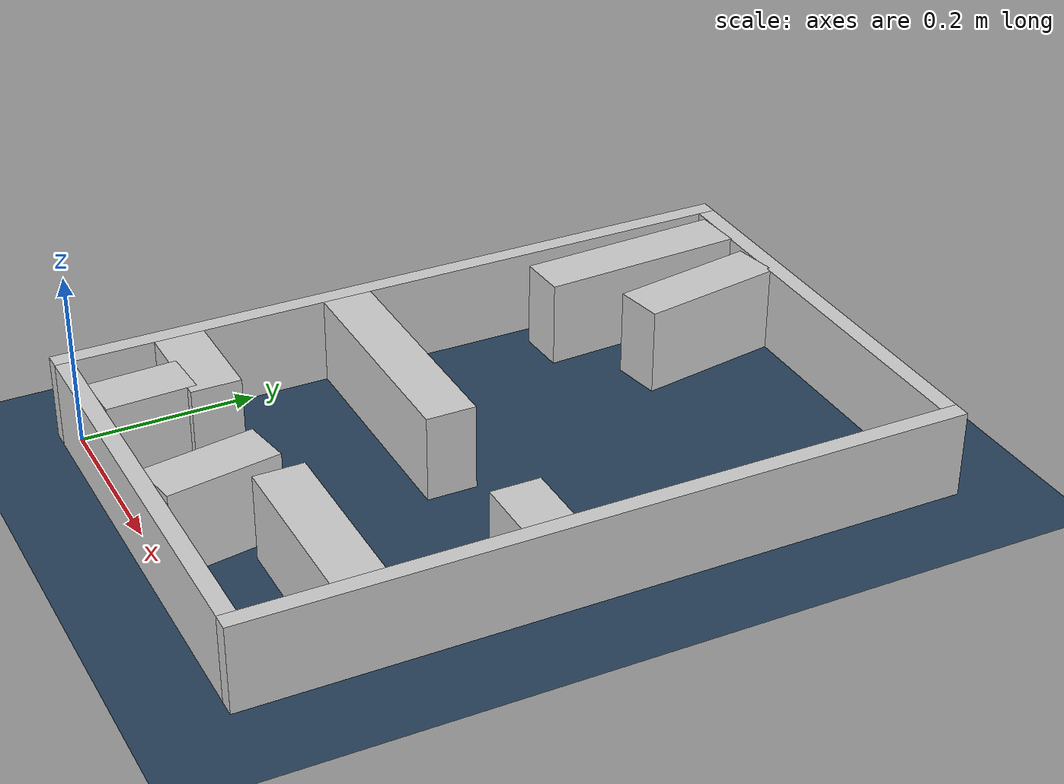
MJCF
<?xml version="1.0" ?>
<mujoco model="generated_real_template">
  <compiler angle="degree"/>
  <option timestep="0.002" integrator="implicitfast" iterations="100" cone="elliptic"/>
  <default>
    <geom density="1"/>
  </default>
  <asset>
    <texture builtin="gradient" height="3072" rgb1="0.3 0.5 0.7" rgb2="0 0 0" type="skybox" width="512"/>
    <texture builtin="checker" height="300" mark="edge" markrgb="0.8 0.8 0.8" name="groundplane" rgb1="0.2 0.3 0.4" rgb2="0.1 0.2 0.3" type="2d" width="300"/>
    <material name="groundplane" reflectance="0.2" texrepeat="5 5" texture="groundplane" texuniform="true"/>
  </asset>
  <worldbody>
    <light dir="0 0 -1" directional="true" pos="0 0 1.5"/>
    <geom name="floor" type="plane" condim="4" friction="0.5 0.005 0.001" material="groundplane" size="0 0 0.05"/>
    <body name="walls">
      <geom name="wall_boundary_left" type="box" condim="4" friction="1.0 0.005 0.0001" rgba="0.8 0.8 0.8 1" pos="-0.010000 0.387500 0.050000" euler="0 0 0.000000" size="0.010000 0.407500 0.050000"/>
      <geom name="wall_boundary_right" type="box" condim="4" friction="1.0 0.005 0.0001" rgba="0.8 0.8 0.8 1" pos="0.500000 0.387500 0.050000" euler="0 0 0.000000" size="0.010000 0.407500 0.050000"/>
      <geom name="wall_boundary_bottom" type="box" condim="4" friction="1.0 0.005 0.0001" rgba="0.8 0.8 0.8 1" pos="0.245000 -0.010000 0.050000" euler="0 0 0.000000" size="0.245000 0.010000 0.050000"/>
      <geom name="wall_boundary_top" type="box" condim="4" friction="1.0 0.005 0.0001" rgba="0.8 0.8 0.8 1" pos="0.245000 0.785000 0.050000" euler="0 0 0.000000" size="0.245000 0.010000 0.050000"/>
      <geom name="wall_inner_1_1" type="box" condim="4" friction="1.0 0.005 0.0001" rgba="0.8 0.8 0.8 1" pos="0.136557 0.318399 0.050000" euler="0 0 0.000000" size="0.136557 0.028500 0.050000"/>
      <geom name="wall_inner_1_2" type="box" condim="4" friction="1.0 0.005 0.0001" rgba="0.8 0.8 0.8 1" pos="0.455087 0.318399 0.050000" euler="0 0 0.000000" size="0.034913 0.028500 0.050000"/>
      <geom name="wall_inner_2_1" type="box" condim="4" friction="1.0 0.005 0.0001" rgba="0.8 0.8 0.8 1" pos="0.144857 0.689135 0.050000" euler="0 0 -80.531454" size="0.087051 0.028500 0.050000"/>
      <geom name="wall_inner_2_2" type="box" condim="4" friction="1.0 0.005 0.0001" rgba="0.8 0.8 0.8 1" pos="0.249078 0.064230 0.050000" euler="0 0 -80.531454" size="0.065117 0.028500 0.050000"/>
      <geom name="wall_inner_3_1" type="box" condim="4" friction="1.0 0.005 0.0001" rgba="0.8 0.8 0.8 1" pos="0.078241 0.050397 0.050000" euler="0 0 92.734515" size="0.050454 0.028500 0.050000"/>
      <geom name="wall_inner_3_2" type="box" condim="4" friction="1.0 0.005 0.0001" rgba="0.8 0.8 0.8 1" pos="0.049354 0.655216 0.050000" euler="0 0 92.734515" size="0.119921 0.028500 0.050000"/>
      <geom name="wall_inner_4_1" type="box" condim="4" friction="1.0 0.005 0.0001" rgba="0.8 0.8 0.8 1" pos="0.057778 0.119988 0.050000" euler="0 0 0.000000" size="0.057778 0.028500 0.050000"/>
      <geom name="wall_inner_4_2" type="box" condim="4" friction="1.0 0.005 0.0001" rgba="0.8 0.8 0.8 1" pos="0.390955 0.119988 0.050000" euler="0 0 0.000000" size="0.099045 0.028500 0.050000"/>
    </body>
  </worldbody>
</mujoco>
